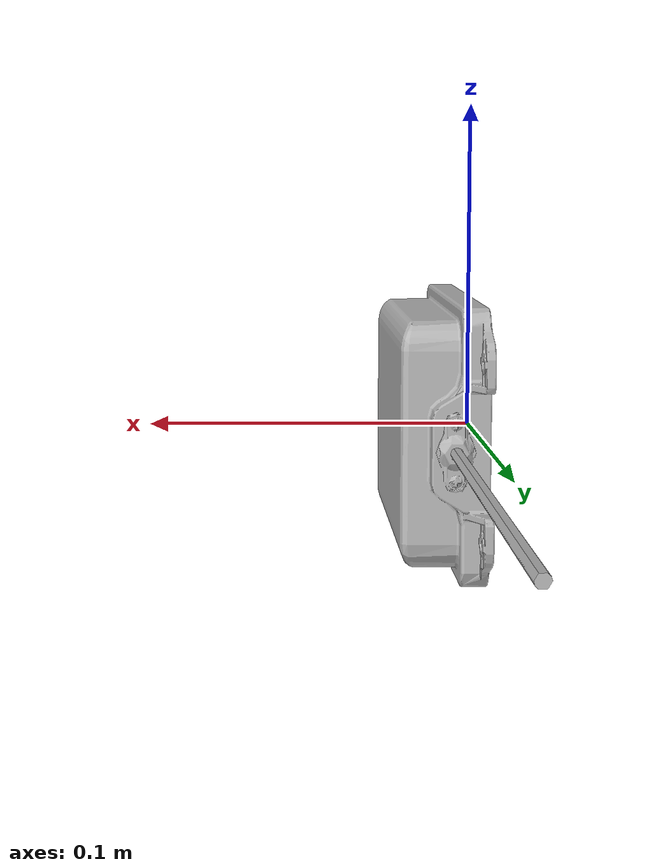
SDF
<?xml version="1.0" ?>
<sdf version="1.4">
  <model name='usharp3d'>
    <pose>0.0 0.0 0.0 0.0 0.0 0.0</pose>
    <link name='link'>
      <inertial>
	<mass>0.01</mass>
	<inertia>
	  <ixx>0.001</ixx>
	  <ixy>0</ixy>
	  <ixz>0</ixz>
	  <iyy>0.001</iyy>
	  <iyz>0</iyz>
	  <izz>0.001</izz>
	</inertia>
      </inertial>
      <collision name='collision'>
	<geometry>
	  <box>
	    <size>0.01 0.05 0.05</size>
	  </box>
	</geometry>
	<max_contacts>10</max_contacts>
	<surface>
	  <contact>
	    <ode/>
	  </contact>
	  <bounce/>
	  <friction>
	    <ode/>
	  </friction>
	</surface>
      </collision>
      <visual name='visual'>
	<geometry>
	  <mesh>
	    <uri>model://usharp3d/meshes/usharp3d.stl</uri>
	    <scale>0.001 0.001 0.001</scale>
	  </mesh>
	</geometry>
      </visual>
      <sensor type="ray" name="range">
	<update_rate>10</update_rate>
	<visualize>true</visualize>
	<ray>
	  <scan>
	    <horizontal>
	      <samples>30</samples> <!-- 1 degree accuracy -->
	      <resolution>1</resolution>
	      <min_angle>-0.524</min_angle> <!-- -15 degrees -->
	      <max_angle>0.524</max_angle>  <!-- +15 degrees -->
	    </horizontal>
	  </scan>
	  <range>
	    <min>1.0</min> <!-- do not change (smaller values cause issues) -->
	    <max>10.0</max>   <!-- do not change (bigger values cause issues) -->
	    <resolution>0.6</resolution>
	  </range>
	</ray>
	<plugin name="range" filename="libgazebo_radar_sensor_plugin.so">
	  <alwaysOn>true</alwaysOn>
	  <updateRate>10</updateRate>
	  <frameName>link</frameName>
	  <topicName>usharp3d/data</topicName>
	</plugin>
      </sensor>
      <self_collide>0</self_collide>
      <kinematic>0</kinematic>
      <gravity>1</gravity>
    </link>
  </model>
</sdf>
